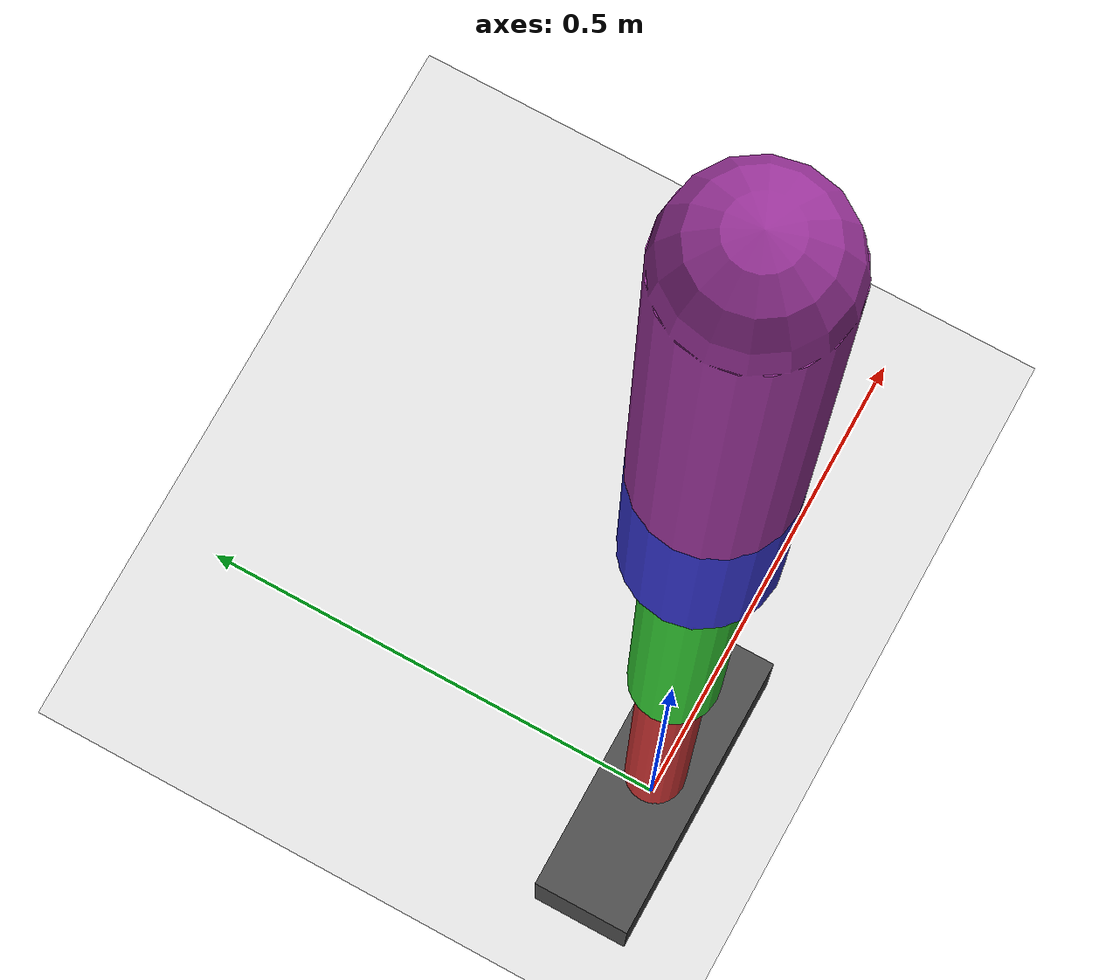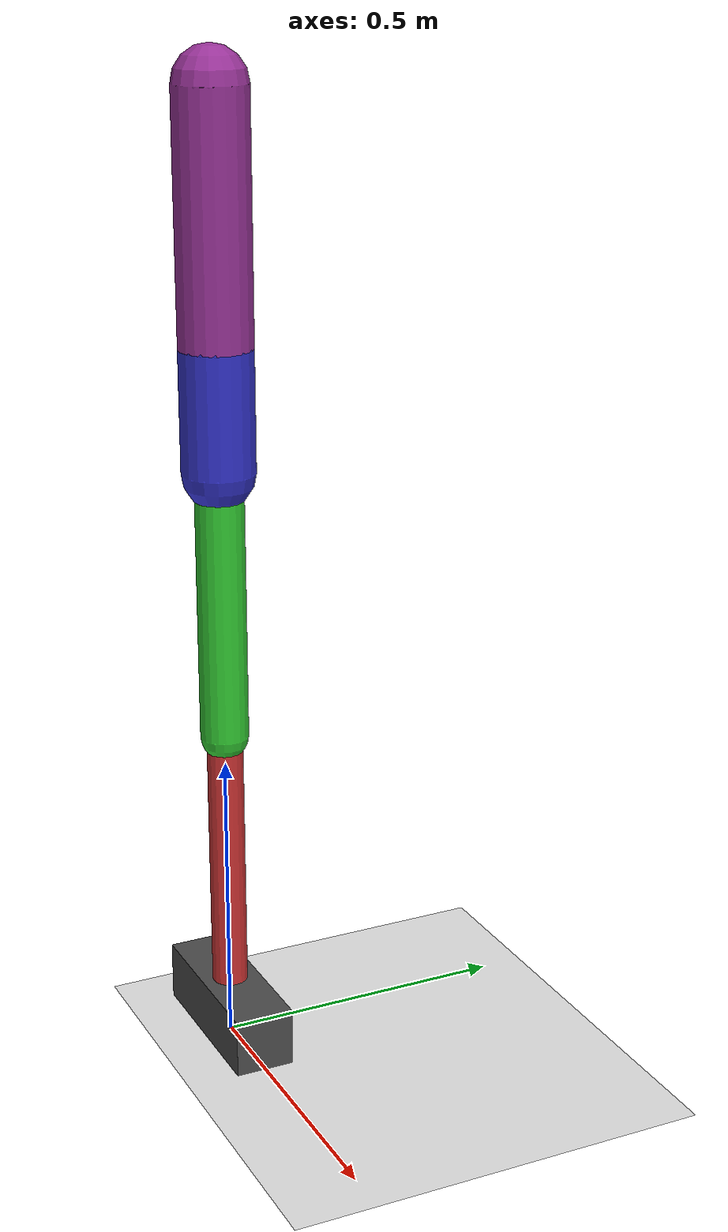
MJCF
<mujoco model="4dof_postural_control">
  <compiler angle="radian" inertiafromgeom="true"/>
  <default>
    <joint armature="0.05" damping="10" stiffness="20" limited="true"/>
    <geom contype="0" friction="1 0.1 0.1" rgba="0.7 0.7 0 1"/>
  </default>
  <option gravity="0 0 -9.81" integrator="implicitfast" timestep="0.005"/>

  <worldbody>
    <geom name="floor" type="plane" pos="0 0 0" size="5 5 0.1" rgba="0.9 0.9 0.9 1"/>

    <!-- Foot (fixed base, represents ankle pivot point) -->
    <body name="foot" pos="0 0 0.05">
      <geom name="foot_geom" type="box" size="0.15 0.05 0.05" rgba="0.3 0.3 0.3 1"/>

      <!-- Shank (lower leg) - rotates at ankle -->
      <body name="shank" pos="0 0 0.05">
        <joint name="ankle" type="hinge" axis="0 1 0" pos="0 0 0" range="-0.5 0.5"/>
        <geom name="shank_geom" type="capsule" fromto="0 0 0 0 0 0.45" size="0.03" rgba="0.8 0.2 0.2 1"/>
        <inertial pos="0 0 0.225" mass="4.0" diaginertia="0.05 0.05 0.01"/>

        <!-- Thigh (upper leg) - rotates at knee -->
        <body name="thigh" pos="0 0 0.45">
          <joint name="knee" type="hinge" axis="0 1 0" pos="0 0 0" range="-0.5 0.5"/>
          <geom name="thigh_geom" type="capsule" fromto="0 0 0 0 0 0.45" size="0.04" rgba="0.2 0.8 0.2 1"/>
          <inertial pos="0 0 0.225" mass="7.0" diaginertia="0.08 0.08 0.02"/>

          <!-- Pelvis/lower trunk - rotates at hip -->
          <body name="pelvis" pos="0 0 0.45">
            <joint name="hip" type="hinge" axis="0 1 0" pos="0 0 0" range="-0.5 0.5" damping="20"/>
            <geom name="pelvis_geom" type="capsule" fromto="0 0 0 0 0 0.2" size="0.06" rgba="0.2 0.2 0.8 1"/>
            <inertial pos="0 0 0.1" mass="12.0" diaginertia="0.1 0.1 0.02"/>

            <!-- Upper trunk - rotates at trunk/lumbar joint -->
            <body name="trunk" pos="0 0 0.2">
              <joint name="trunk" type="hinge" axis="0 1 0" pos="0 0 0" range="-0.4 0.4"/>
              <geom name="trunk_geom" type="capsule" fromto="0 0 0 0 0 0.4" size="0.06" rgba="0.6 0.2 0.6 1"/>
              <inertial pos="0 0 0.2" mass="23.0" diaginertia="0.25 0.25 0.04"/>
            </body>

          </body>
        </body>
      </body>
    </body>
  </worldbody>

  <actuator>
    <motor name="ankle_motor" joint="ankle" gear="50" ctrlrange="-1 1"/>
    <motor name="knee_motor" joint="knee" gear="50" ctrlrange="-1 1"/>
    <motor name="hip_motor" joint="hip" gear="75" ctrlrange="-1 1"/>
    <motor name="trunk_motor" joint="trunk" gear="40" ctrlrange="-1 1"/>
  </actuator>

</mujoco>
